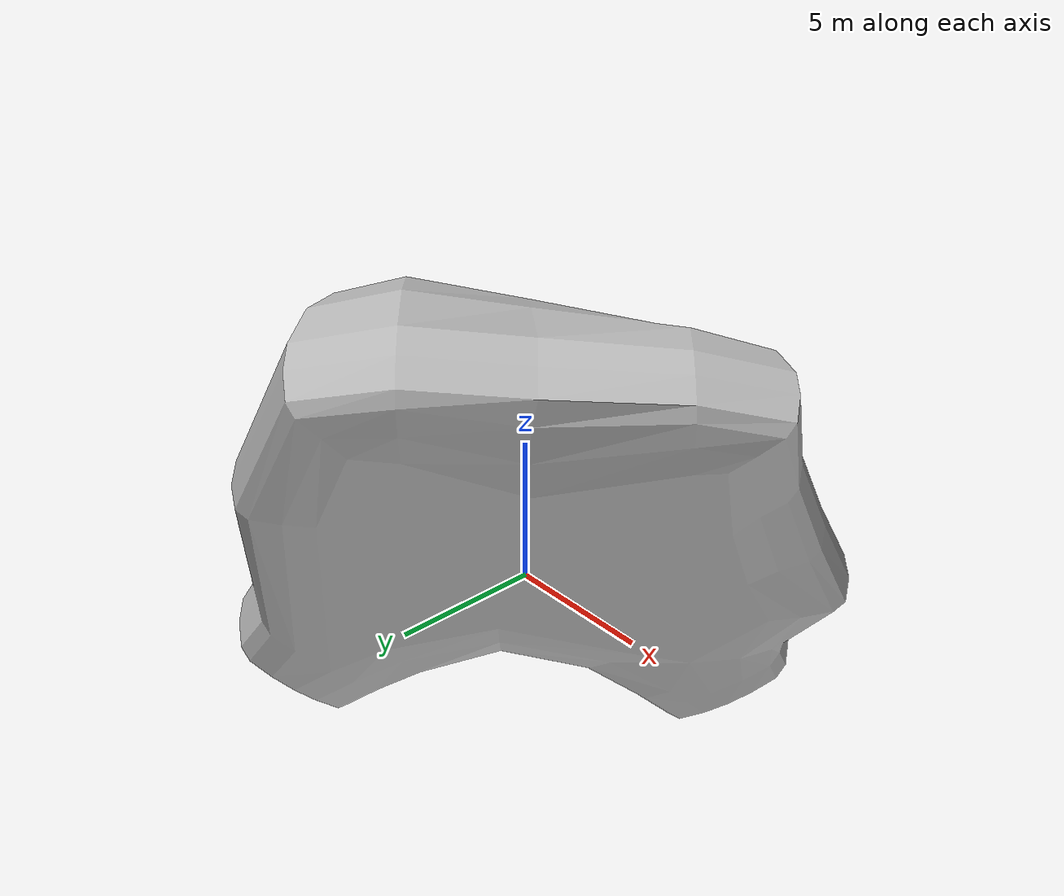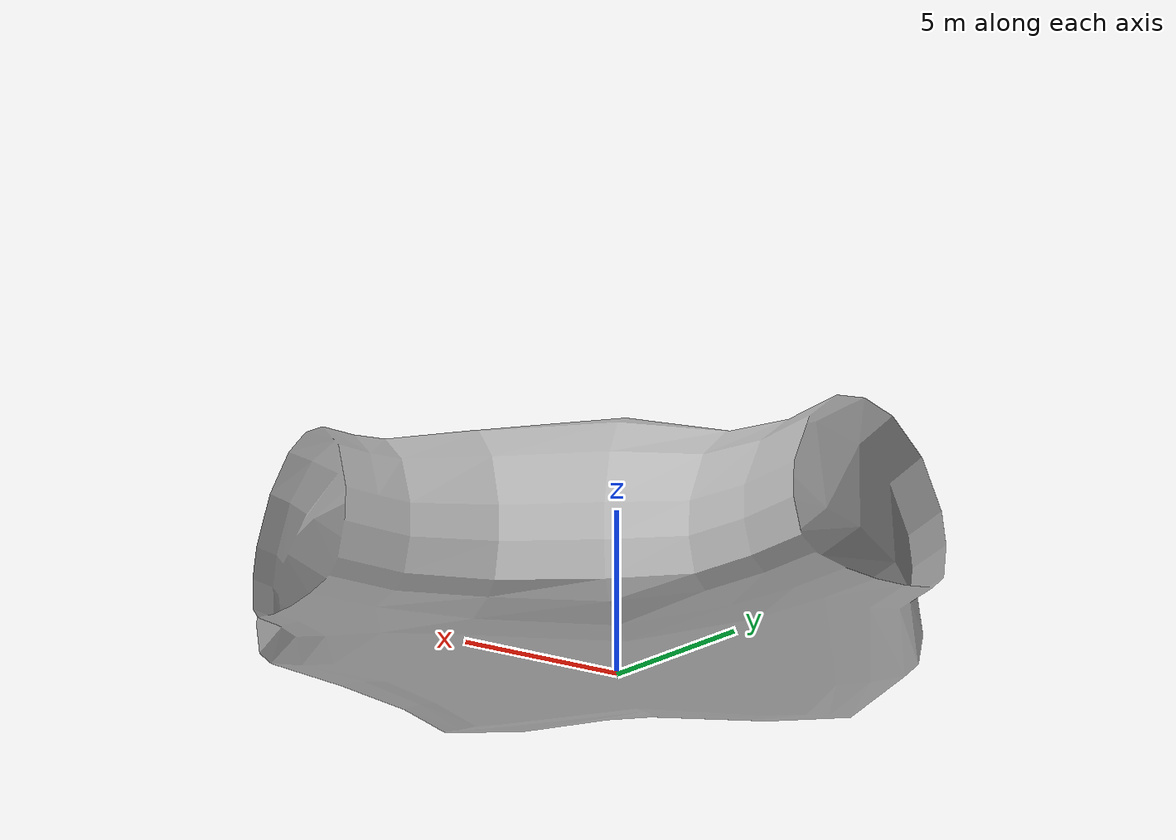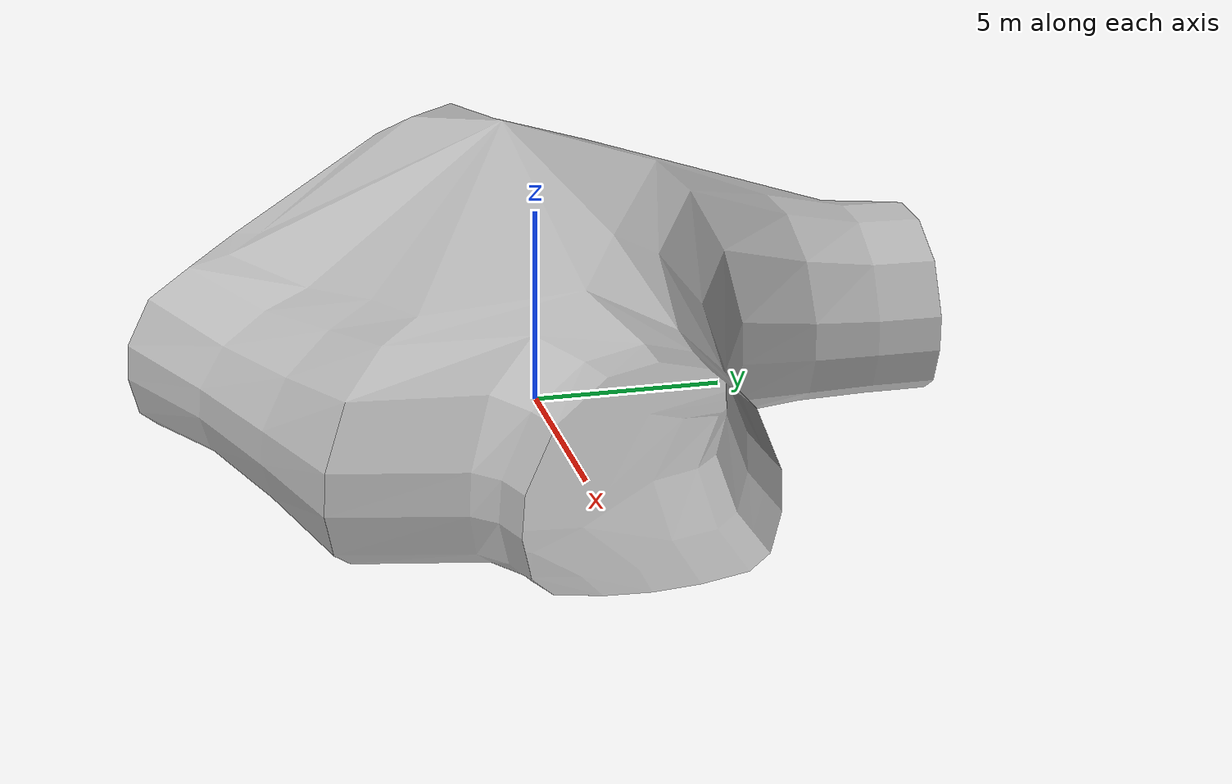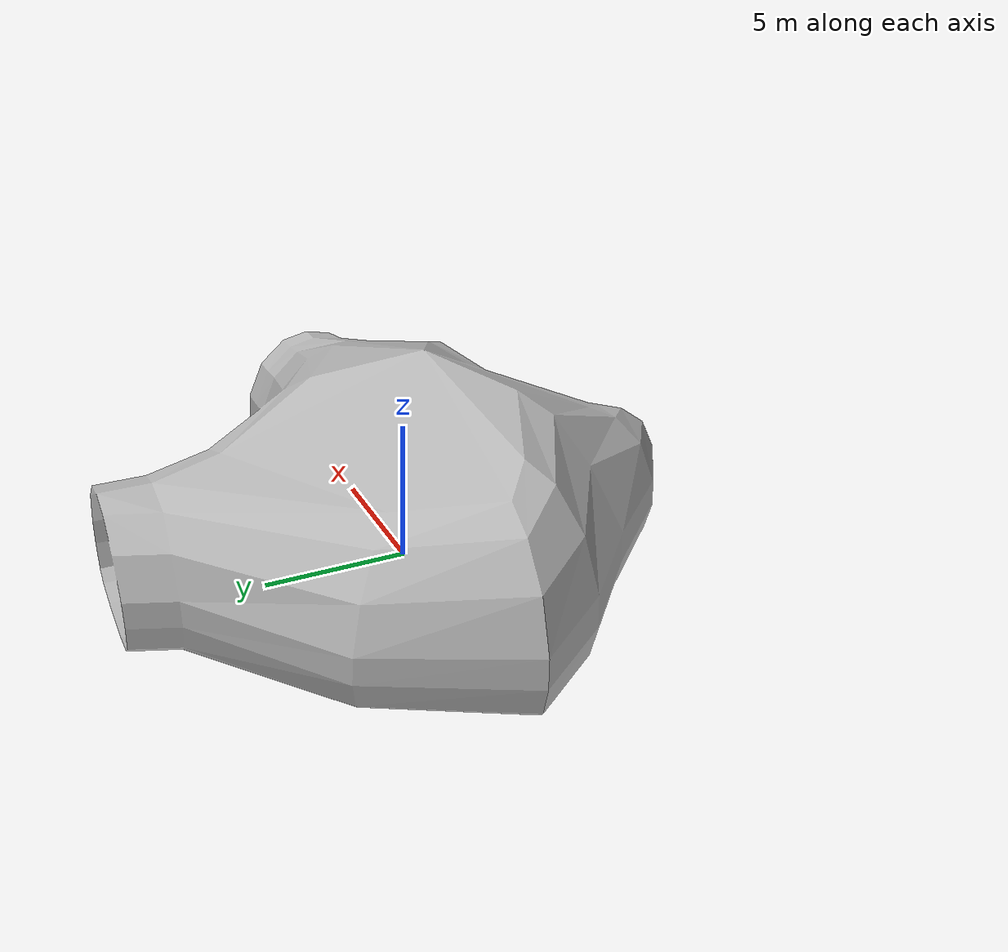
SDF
<?xml version="1.0" ?>
<sdf version="1.6">
  <model name="cave_tile_start">
    <static>true</static>
    <link name="link">
      <collision name="collision">
        <geometry>
          <mesh>
            <uri>model://cave_tile_start/meshes/cave_tile_start.dae</uri>
          </mesh>
        </geometry>
      </collision>
      <visual name="visual">
        <geometry>
          <mesh>
            <uri>model://cave_tile_start/meshes/cave_tile_start.dae</uri>
          </mesh>
        </geometry>
      </visual>
    </link>
  </model>
</sdf>
